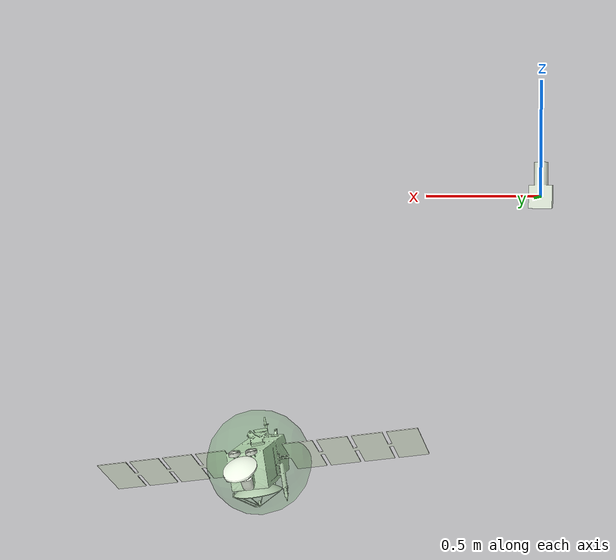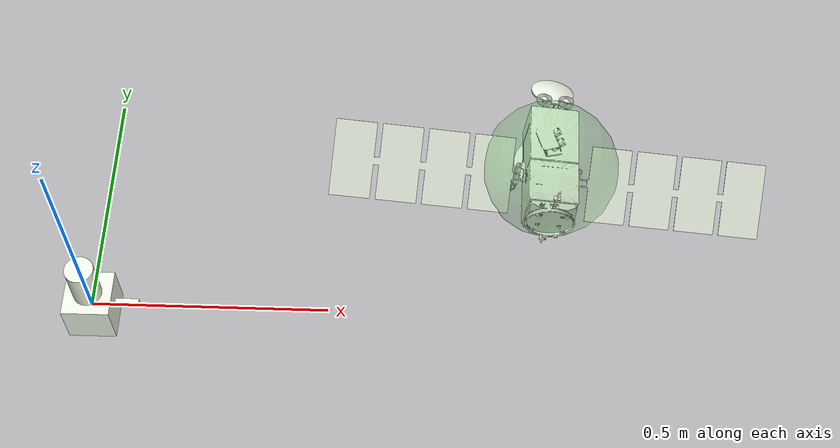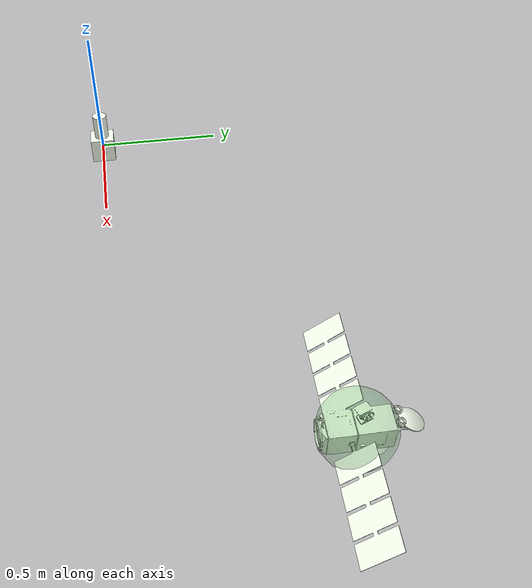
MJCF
<?xml version="1.0" ?>
<mujoco model="free_floating_ISS">
    <compiler angle="radian" />
    <option timestep="0.2" iterations="30">
        <flag gravity="disable" />
    </option>
    <asset>
		<texture type="skybox" builtin="none" file="space.png" rgb1="1 1 1" rgb2=".6 .8 1" />
        <texture name="texplane" type="2d" builtin="checker" rgb1=".2 .3 .4" rgb2=".1 0.15 0.2" width="512" height="512"/>
        <material name="MatGnd" reflectance="0.5" texture="texplane" texrepeat="1 1" texuniform="true"/>

        <mesh name="ISS_viz" file="meshes/Jason-1.stl" scale='0.02 0.02 0.02'/>
        <mesh name="satellite_viz" file="meshes/satellite.stl" scale='0.001 0.001 0.001'/>
    </asset>
    <size njmax="1000" nconmax="100" />

    <default>
        <default class="panda">
            <joint pos="0 0 0" axis="0 0 1" limited="true"/>
            <position forcelimited="true" ctrllimited="true" user="1002 40 2001 -0.005 0.005"/>
            <default class="spaceRobot_viz">
                <geom contype="0" conaffinity="0" group="0" type="mesh" rgba=".95 .99 .92 1" mass="0"/>
            </default>

            <default class="spaceRobot_col">
                <geom contype="1" conaffinity="1" group="3" type="mesh" rgba=".5 .6 .7 1"/>
            </default>

             <default class="spaceRobot_finger">
                <joint damping="100" armature='5'/>
                <geom friction="1 0.5 0.0001" solref="0.01 1" solimp="0.8 0.9 0.001" margin="0.001" user="0" rgba="0.5 0.6 0.7 .4" contype="1" conaffinity="0" condim="6" group="3" />
                <position user="1002 40 2001 -0.0001 0.0001"/>
            </default>
        </default>

    </default>

    <worldbody>
        <light directional="false" diffuse=".8 .8 .8" specular="0.3 0.3 0.3" pos="1  1 3" dir="-1 -1 -3"/>
        <light directional="false" diffuse=".8 .8 .8" specular="0.3 0.3 0.3" pos="1 -1 3" dir="-1 1 -3"/>
        <light directional="false" diffuse=".8 .8 .8" specular="0.3 0.3 0.3" pos="-1 0 3" dir="1 0 -3" />
        <body name="ISS" pos="1 1 -1" euler='0 30 0' childclass='spaceRobot_finger'>
            <site name="ISScom" pos="0 0 0" rgba="0.2 0.6 0.2 0.25" size=".2" type="sphere" />
            <inertial pos="-1.57863e-05 0.0118731 0.0434103" quat="0.705868 0.0310348 -0.0314925 0.706962" mass="0.0927059" diaginertia="6.57134e-05 6.09611e-05 1.09932e-05" />
            <joint damping="200" name="issJoint1" pos="0 0 0" axis="0 0 1" limited="true" range="-3.14159e05 3.14159e05" type="hinge"/>
            <joint damping="200" name="issJoint2" pos="0 0 0" axis="0 1 0" limited="true" range="-3.14159e05 3.14159e05" type="hinge"/>
            <joint damping="200" name="issJoint3" pos="0 0 0" axis="1 0 0" limited="true" range="-3.14159e05 3.14159e05" type="hinge"/>
            <joint damping="200" name="issJoint4" pos="0 0 0" axis="0 0 1" type="slide" limited="true" range="0 1.0e05"/>
            <joint damping="200" name="issJoint5" pos="0 0 0" axis="0 1 0" type="slide" limited="true" range="0 1.0e05"/>
            <joint damping="200" name="issJoint6" pos="0 0 0" axis="1 0 0" type="slide" limited="true" range="0 1.0e05"/>
            <geom pos="0 0 0" euler='0 0 0' class="spaceRobot_viz" mesh="ISS_viz"/>
        </body>

        <body name="chaser" pos="0 0 0" euler='0 0 0'  childclass='spaceRobot_finger'>
            <site name="chaseCom" pos="0 0 0" rgba="0.2 0.6 0.2 0.25" size=".02" type="sphere" />
            <inertial pos="0 0 0" quat="0 0 0 1" mass="1" diaginertia="6.57e-05 6.09e-05 1.09e-05" />
            <joint damping="200" name="satJoint1" pos="0 0 0" axis="0 0 1" limited="true" range="-3.14159e05 3.14159e05" type="hinge" />
            <joint damping="200" name="satJoint2" pos="0 0 0" axis="0 1 0" limited="true" range="-3.14159e05 3.14159e05" type="hinge" />
            <joint damping="200" name="satJoint3" pos="0 0 0" axis="1 0 0" limited="true" range="-3.14159e05 3.14159e05" type="hinge" />
            <joint damping="200" name="satJoint4" pos="0 0 0" axis="0 0 1" type="slide" limited="true" range="0 1.0e05" />
            <joint damping="200" name="satJoint5" pos="0 0 0" axis="0 1 0" type="slide" limited="true" range="0 1.0e05" />
            <joint damping="200" name="satJoint6" pos="0 0 0" axis="1 0 0" type="slide" limited="true" range="0 1.0e05" />
            <geom pos="0 0 0" euler='0 0 0' class="spaceRobot_viz" mesh="satellite_viz"/>
            <camera euler="0 0 0" fovy="40" name="rgb_ash" pos="0 0 0" ></camera>
        </body>
    </worldbody>

    <actuator>
        <motor name="motor1" joint="satJoint1" ctrlrange="-3 3" ctrllimited="true" />
        <motor name="motor2" joint="satJoint2" ctrlrange="-3 3" ctrllimited="true" />
        <motor name="motor3" joint="satJoint3" ctrlrange="-3 3" ctrllimited="true" />
        <motor name="motor4" joint="satJoint4" ctrlrange="-3 3" ctrllimited="true" />
        <motor name="motor5" joint="satJoint5" ctrlrange="-3 3" ctrllimited="true" />
        <motor name="motor6" joint="satJoint6" ctrlrange="-3 3" ctrllimited="true" />

        <motor name="motor7"  joint="issJoint1" ctrlrange="-3 3" ctrllimited="true" />
        <motor name="motor8"  joint="issJoint2" ctrlrange="-3 3" ctrllimited="true" />
        <motor name="motor9"  joint="issJoint3" ctrlrange="-3 3" ctrllimited="true" />
        <motor name="motor10" joint="issJoint4" ctrlrange="-3 3" ctrllimited="true" />
        <motor name="motor11" joint="issJoint5" ctrlrange="-3 3" ctrllimited="true" />
        <motor name="motor12" joint="issJoint6" ctrlrange="-3 3" ctrllimited="true" />
    </actuator>

    <sensor>
        <jointpos name="encoderPos1" joint="satJoint1" noise="0.001" />
        <jointpos name="encoderPos2" joint="satJoint2" noise="0.001" />
        <jointpos name="encoderPos3" joint="satJoint3" noise="0.001" />
        <jointpos name="encoderPos4" joint="satJoint4" noise="0.001" />
        <jointpos name="encoderPos5" joint="satJoint5" noise="0.001" />
        <jointpos name="encoderPos6" joint="satJoint6" noise="0.001" />

        <jointpos name="encoderPos7" joint="issJoint1" noise="0.001" />
        <jointvel name="encoderVel1" joint="issJoint2" noise="0.001" />
        <jointvel name="encoderVel2" joint="issJoint3" noise="0.001" />
        <jointvel name="encoderVel3" joint="issJoint4" noise="0.001" />
        <jointvel name="encoderVel4" joint="issJoint5" noise="0.001" />
        <jointvel name="encoderVel5" joint="issJoint6" noise="0.001" />
    </sensor>

</mujoco>
